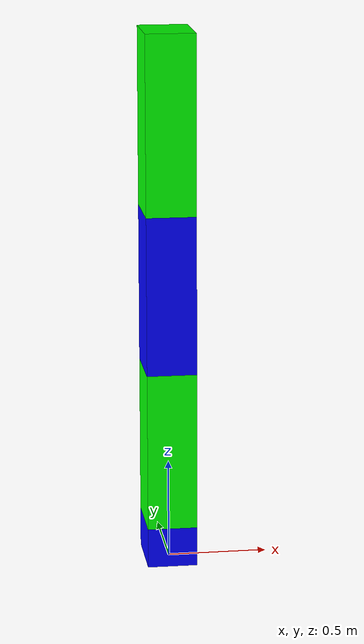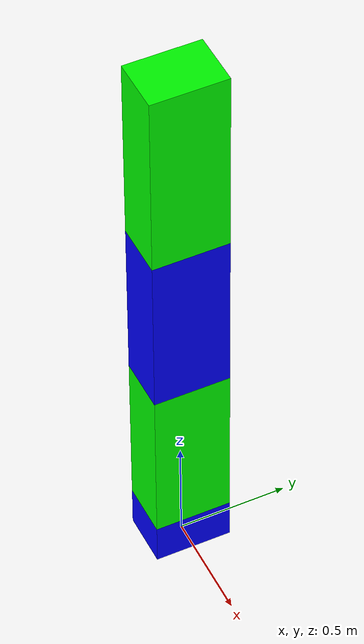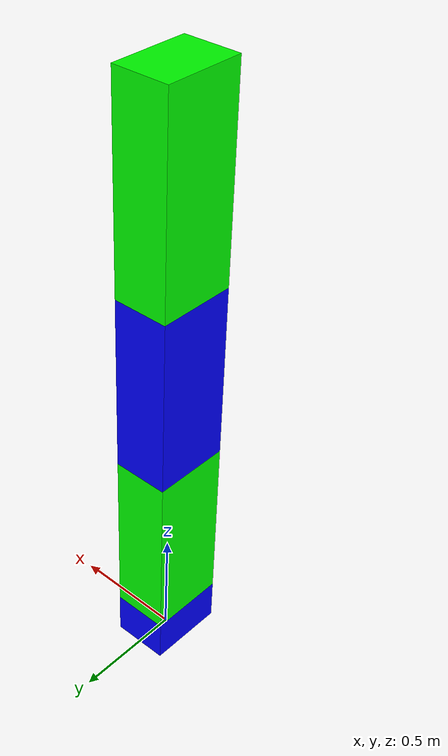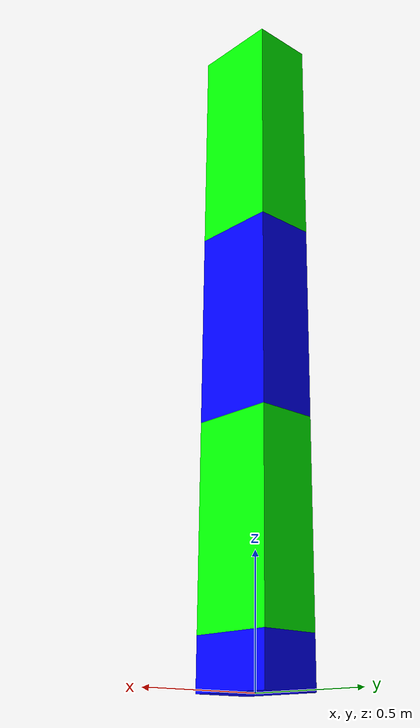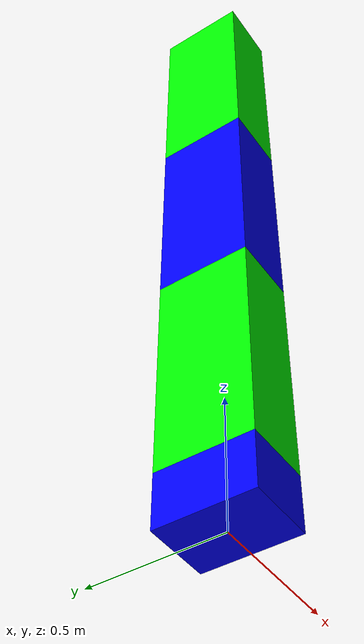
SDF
<sdf version='1.9'>
  <model name='arm'>
    <link name='base_link'>
      <inertial>
        <pose>0 0 0.15 0 0 0</pose>
        <mass>0.5</mass>
        <inertia>
          <ixx>0.00056666666666666671</ixx>
          <ixy>0</ixy>
          <ixz>0</ixz>
          <iyy>0.001816666666666668</iyy>
          <iyz>0</iyz>
          <izz>0.0020833333333333342</izz>
        </inertia>
      </inertial>
      <collision name='base_link_fixed_joint_lump__bodylink_1_collision'>
        <pose>0 0 0 0 0 0</pose>
        <geometry>
          <box>
            <size>0.25 0.35 0</size>
          </box>
        </geometry>
      </collision>
      <visual name='base_link_fixed_joint_lump__bodylink_1_visual'>
        <pose>0 0 0.1 0 0 0</pose>
        <geometry>
          <box>
            <size>0.25 0.35 0.2</size>
          </box>
        </geometry>
        <material>
          <diffuse>0 0 1 1</diffuse>
          <ambient>0 0 1 1</ambient>
        </material>
      </visual>
    </link>
    <joint name='bodyjoint_1' type='revolute'>
      <pose relative_to='base_link'>0 0 0.2 0 0 0</pose>
      <parent>base_link</parent>
      <child>bodylink_2</child>
      <axis>
        <xyz>0 1 0</xyz>
        <limit>
          <lower>-90</lower>
          <upper>90</upper>
          <effort>10</effort>
          <velocity>5</velocity>
        </limit>
        <dynamics>
          <spring_reference>0</spring_reference>
          <spring_stiffness>0</spring_stiffness>
        </dynamics>
      </axis>
    </joint>
    <link name='bodylink_2'>
      <pose relative_to='bodyjoint_1'>0 0 0 0 0 0</pose>
      <inertial>
        <pose>0 0 1 0 0 0</pose>
        <mass>0.5</mass>
        <inertia>
          <ixx>0.00056666666666666671</ixx>
          <ixy>0</ixy>
          <ixz>0</ixz>
          <iyy>0.001816666666666667</iyy>
          <iyz>0</iyz>
          <izz>0.0020833333333333342</izz>
        </inertia>
      </inertial>
      <collision name='bodylink_2_collision'>
        <pose>0 0 0.4 0 0 0</pose>
        <geometry>
          <box>
            <size>0.25 0.35 0.55</size>
          </box>
        </geometry>
      </collision>
      <visual name='bodylink_2_visual'>
        <pose>0 0 0.4 0 0 0</pose>
        <geometry>
          <box>
            <size>0.25 0.35 0.8</size>
          </box>
        </geometry>
        <material>
          <diffuse>0 1 0 1</diffuse>
          <ambient>0 1 0 1</ambient>
        </material>
      </visual>
    </link>
    <joint name='bodyjoint_2' type='revolute'>
      <pose relative_to='bodylink_2'>0 0 0.8 0 0 0</pose>
      <parent>bodylink_2</parent>
      <child>bodylink_3</child>
      <axis>
        <xyz>0 1 0</xyz>
        <limit>
          <lower>-90</lower>
          <upper>90</upper>
          <effort>10</effort>
          <velocity>5</velocity>
        </limit>
        <dynamics>
          <spring_reference>0</spring_reference>
          <spring_stiffness>0</spring_stiffness>
        </dynamics>
      </axis>
    </joint>
    <link name='bodylink_3'>
      <pose relative_to='bodyjoint_2'>0 0 0 0 0 0</pose>
      <inertial>
        <pose>0 0 1 0 0 0</pose>
        <mass>0.5</mass>
        <inertia>
          <ixx>0.00056666666666666671</ixx>
          <ixy>0</ixy>
          <ixz>0</ixz>
          <iyy>0.001816666666666667</iyy>
          <iyz>0</iyz>
          <izz>0.0020833333333333342</izz>
        </inertia>
      </inertial>
      <collision name='bodylink_3_collision'>
        <pose>0 0 0.4 0 0 0</pose>
        <geometry>
          <box>
            <size>0.25 0.35 0.55</size>
          </box>
        </geometry>
      </collision>
      <visual name='bodylink_3_visual'>
        <pose>0 0 0.4 0 0 0</pose>
        <geometry>
          <box>
            <size>0.25 0.35 0.8</size>
          </box>
        </geometry>
        <material>
          <diffuse>0 0 1 1</diffuse>
          <ambient>0 0 1 1</ambient>
        </material>
      </visual>
    </link>
    <joint name='bodyjoint_3' type='revolute'>
      <pose relative_to='bodylink_3'>0 0 0.8 0 0 0</pose>
      <parent>bodylink_3</parent>
      <child>bodylink_4</child>
      <axis>
        <xyz>0 1 0</xyz>
        <limit>
          <lower>-90</lower>
          <upper>90</upper>
          <effort>10</effort>
          <velocity>5</velocity>
        </limit>
        <dynamics>
          <spring_reference>0</spring_reference>
          <spring_stiffness>0</spring_stiffness>
        </dynamics>
      </axis>
    </joint>
    <link name='bodylink_4'>
      <pose relative_to='bodyjoint_3'>0 0 0 0 0 0</pose>
      <inertial>
        <pose>0 0 1 0 0 0</pose>
        <mass>0.5</mass>
        <inertia>
          <ixx>0.00056666666666666671</ixx>
          <ixy>0</ixy>
          <ixz>0</ixz>
          <iyy>0.001816666666666667</iyy>
          <iyz>0</iyz>
          <izz>0.0020833333333333342</izz>
        </inertia>
      </inertial>
      <collision name='bodylink_4_collision'>
        <pose>0 0 0.45 0 0 0</pose>
        <geometry>
          <box>
            <size>0.25 0.35 0.65</size>
          </box>
        </geometry>
      </collision>
      <visual name='bodylink_4_visual'>
        <pose>0 0 0.45 0 0 0</pose>
        <geometry>
          <box>
            <size>0.25 0.35 0.9</size>
          </box>
        </geometry>
        <material>
          <diffuse>0 1 0 1</diffuse>
          <ambient>0 1 0 1</ambient>
        </material>
      </visual>
    </link>
    <frame name='base_joint' attached_to='base_link'>
      <pose>0 0 0 0 -0 0</pose>
    </frame>
    <frame name='bodylink_1' attached_to='base_joint'/>
  </model>
</sdf>
